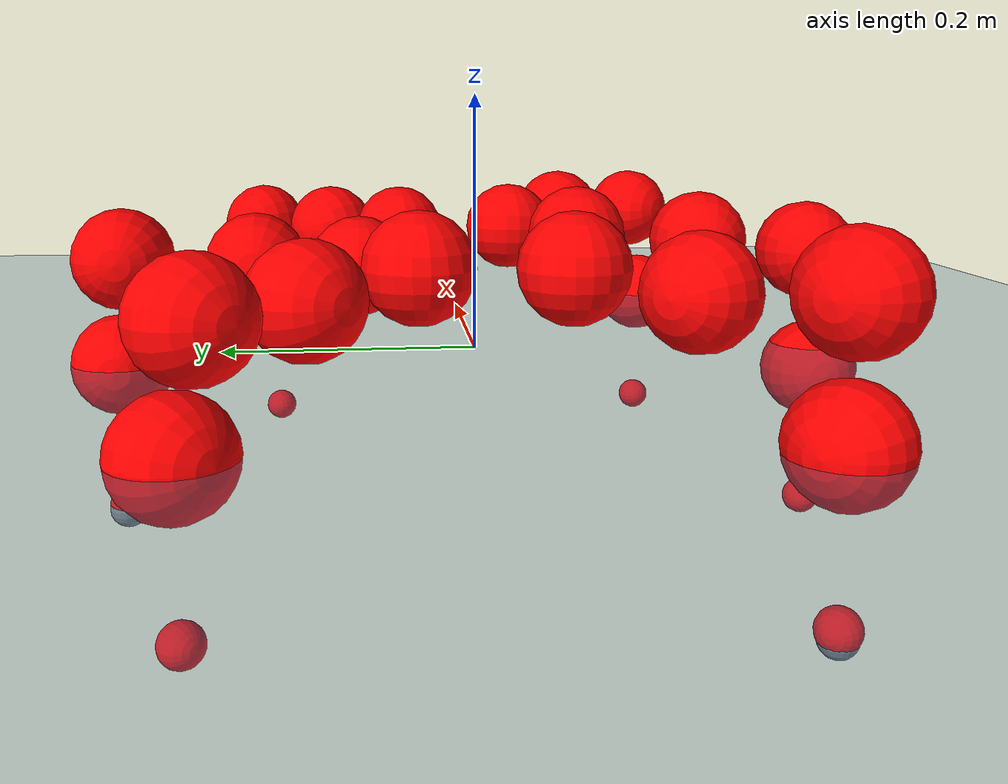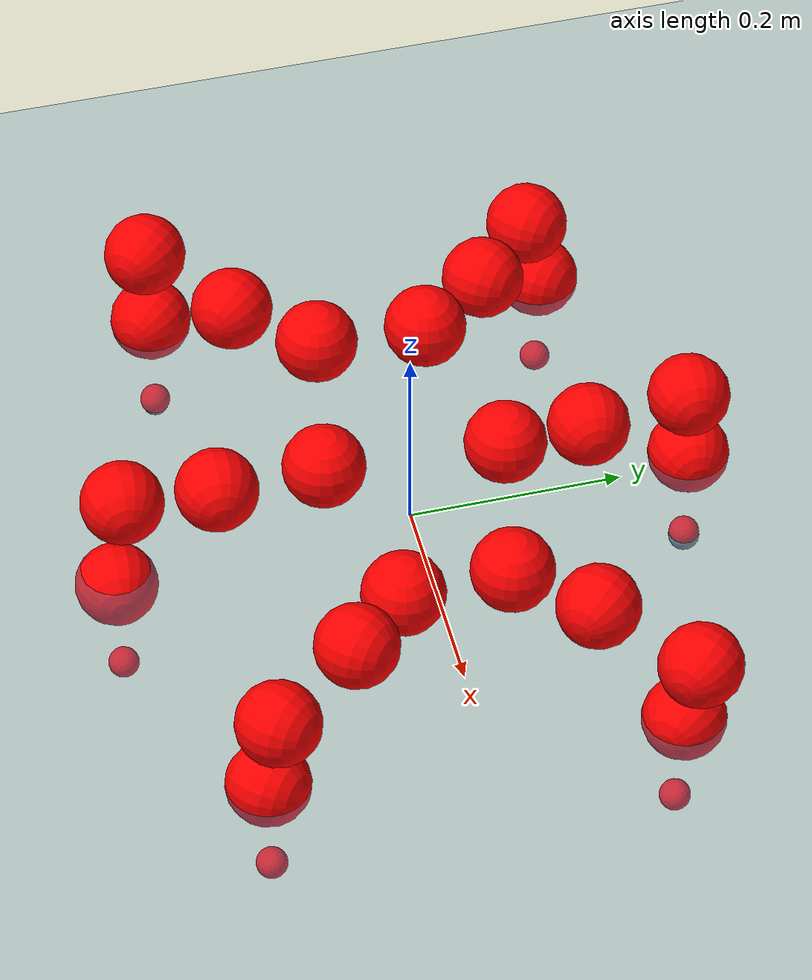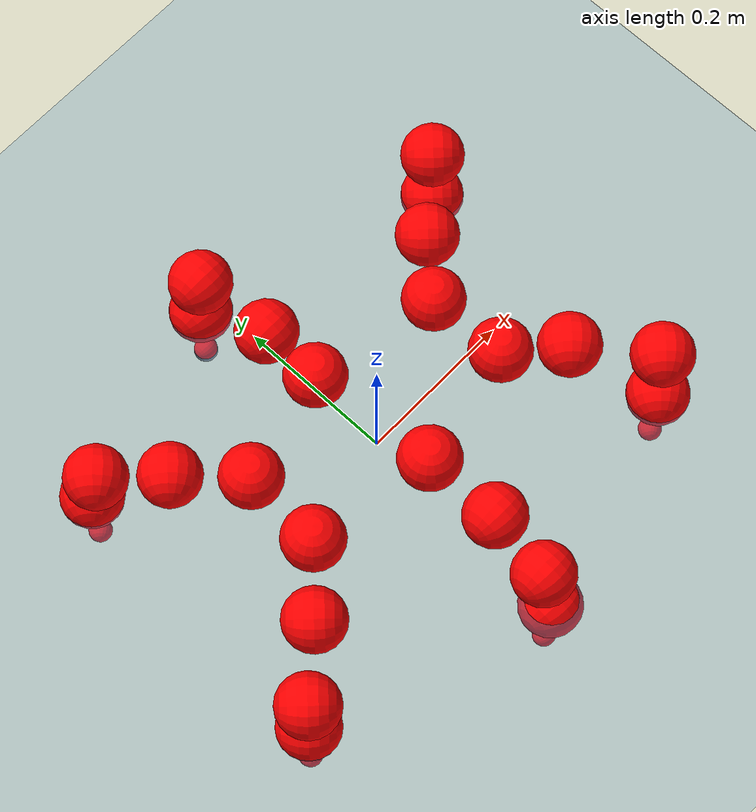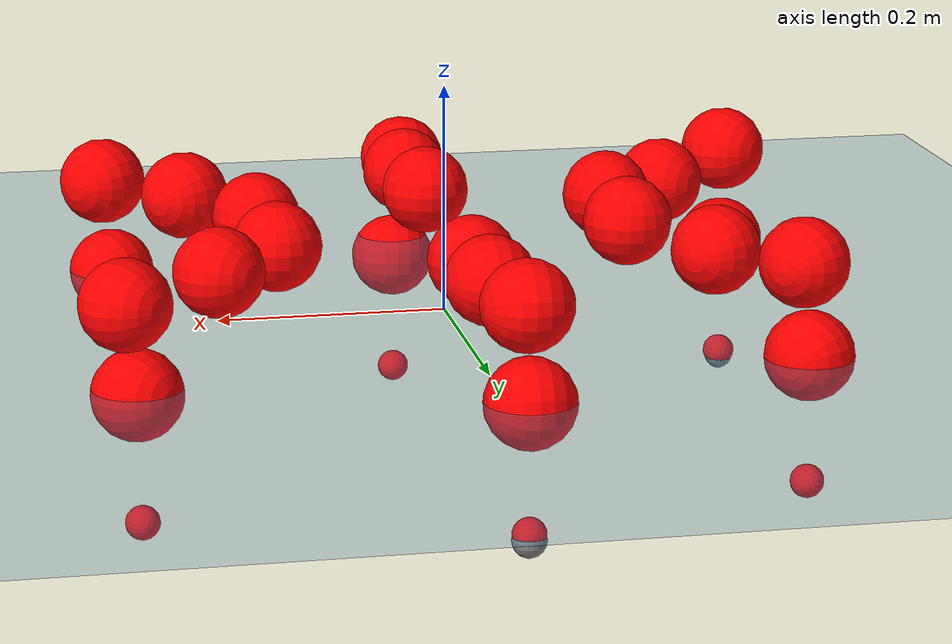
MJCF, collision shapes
<mujoco model="Golem">
  <compiler angle="radian" assetdir="assets" balanceinertia="true" inertiafromgeom="false"/>

  <option timestep="0.005" density="1.2" viscosity="2e-05"/>

  <size nkey="1"/>

  <visual>
    <quality shadowsize="8192"/>
    <map shadowclip="0.5"/>
  </visual>

  <default>
    <default class="/">
      <joint armature="0.01" damping="0.01" frictionloss="0.01"/>
      <geom contype="0" conaffinity="0" group="1" solref="-1000 -80"/>
      <site size="0.01 0.005 0.005" group="5"/>
      <general forcelimited="true" biastype="affine" gainprm="25" biasprm="0 -25 -0.5"/>
      <default class="visual">
        <geom type="mesh" group="2"/>
      </default>
      <default class="collision">
        <geom group="3"/>
      </default>
      <default class="foot">
        <geom size="0.01 0 0" condim="6" group="4" priority="1" solimp="0.015 1 0.01"/>
      </default>
      <default class="reward_collision_sphere">
        <geom group="5" rgba="1 0 0 1"/>
      </default>
    </default>
  </default>

  <asset>
    <texture type="skybox" colorspace="auto" name="//unnamed_texture_0" builtin="gradient" rgb1="0.95 0.95 0.95" rgb2="0.95 0.95 0.95" width="100" height="600"/>
    <texture type="2d" colorspace="auto" name="texplane" builtin="checker" rgb1="0.345 0.575 0.748" rgb2="0.345 0.575 0.748" markrgb="1 1 1" width="512" height="512"/>
    <material name="MatPlane" class="/" texture="texplane" texuniform="true" texrepeat="2 2" specular="0.9"/>
    <mesh name="body" class="/" file="body.stl" scale="0.001 0.001 0.001"/>
    <mesh name="coxa" class="/" file="coxa.stl" scale="0.001 0.001 0.001"/>
    <mesh name="femur" class="/" file="femur.stl" scale="0.001 0.001 0.001"/>
    <mesh name="tibia" class="/" file="tibia.stl" scale="0.001 0.001 0.001"/>
    <mesh name="tarsus" class="/" file="tarsus.stl" scale="0.001 0.001 0.001"/>
  </asset>

  <worldbody>
    <geom name="floor" class="/" size="100 100 0.125" type="plane" group="0" material="MatPlane"/>
    <light name="toplight_shadow" class="/" pos="0 0 5" dir="0.0990148 0.0990148 -0.990148" type="directional" ambient="0.04 0.04 0.04" diffuse="0.55 0.55 0.55" specular="0.12 0.12 0.12"/>
    <light name="toplight_fill" class="/" pos="0 0 5" dir="0.0990148 0.0990148 -0.990148" type="directional" castshadow="false" ambient="0.04 0.04 0.04" diffuse="0.3 0.3 0.3" specular="0.08 0.08 0.08"/>
    <body name="trunk" pos="0.0059964 -0.000299193 0.0131593" quat="1 -0.00014264 -0.000312599 0.000367033">
      <inertial pos="-0.00631275 -0.00168088 -0.0119565" quat="0.998966 0.0405459 0.0138145 0.0152143" mass="2.89502" diaginertia="0.013541 0.00433535 0.0088664"/>
      <joint name="//unnamed_joint_0" type="free"/>
      <geom name="//unnamed_geom_1" class="/" pos="0 0 0.063338" quat="1 0 0 0" type="mesh" rgba="0.9 0.9 0.9 1" mesh="body"/>
      <site name="imu" class="/" pos="0.131813 0.00377288 0.0814802" size="0.00962156"/>
      <camera name="track" class="/" pos="0 -1.73442 0" quat="0.707107 0.707107 0 0" mode="trackcom"/>
      <camera name="ego_camera" class="/" pos="0.133848 0 0.0989656" quat="-0.5 -0.5 0.5 0.5"/>
      <body name="coxa_RR" pos="-0.185063 -0.0723321 0.0725712" quat="0.382239 -2.66644e-05 0.000523715 -0.924063">
        <inertial pos="-0.000913878 0.0129315 -0.00112253" quat="0.999924 0.00588751 0.0105701 0.00218315" mass="0.213848" diaginertia="0.0151592 0.00497206 0.0106393"/>
        <joint name="coxa_joint_RR" class="/" pos="0 0 0" axis="0.0380466 0.0629436 -0.997292" range="-3.11696 3.30871" armature="0.0129882" damping="0.0342261" frictionloss="0.00904368"/>
        <geom name="//unnamed_geom_2" class="/" type="mesh" rgba="0.2 0.2 0.2 1" mesh="coxa"/>
        <geom name="//unnamed_geom_3" class="reward_collision_sphere" size="0.0384862" pos="-0.0308881 0 0"/>
        <body name="femur_RR" pos="0.0631601 -0.000483613 -0.00600195" quat="0.500825 -0.49987 0.499361 0.499942">
          <inertial pos="0.00277637 -0.00697353 0.00693884" quat="0.999982 0.00449436 0.00126732 -0.00368828" mass="0.177322" diaginertia="0.011816 0.00500291 0.00944202"/>
          <joint name="femur_joint_RR" class="/" pos="0 0 0" axis="0.000325678 -0.00705113 -0.999975" stiffness="0.0255749" range="-3.20257 3.3786" armature="0.0137187" damping="0.00313948" frictionloss="0.00532565"/>
          <geom name="//unnamed_geom_4" class="/" type="mesh" rgba="0.9 0.9 0.9 1" mesh="femur"/>
          <geom name="//unnamed_geom_5" class="reward_collision_sphere" size="0.0384862"/>
          <body name="tibia_RR" pos="-0.011619 -0.102351 -0.00861453" quat="0.00132051 0.999995 -0.00162992 -0.0024014">
            <inertial pos="0.0109012 0.00766074 0.000606959" quat="0.998874 -0.038364 0.0195753 -0.0199051" mass="0.177441" diaginertia="0.0133307 0.00506633 0.00990865"/>
            <joint name="tibia_joint_RR" class="/" pos="0 0 0" axis="0.000778679 -0.033643 0.999434" range="-2.88596 3.24234" armature="0.0136273" damping="0.0351966" frictionloss="0.00923581"/>
            <geom name="//unnamed_geom_6" class="/" type="mesh" rgba="0.2 0.2 0.2 1" mesh="tibia"/>
            <geom name="//unnamed_geom_7" class="reward_collision_sphere" size="0.0384862"/>
            <body name="tarsus_RR" pos="0.0868583 -0.00181061 0.000825177" quat="0.999999 -0.00139472 1.10658e-05 0.000788981">
              <inertial pos="0.061053 -0.0117088 0.00895992" quat="0.502787 0.492983 0.517969 0.485676" mass="0.176028" diaginertia="0.0111778 0.00438833 0.00939767"/>
              <joint name="tarsus_joint_RR" class="/" pos="0 0 0" axis="-0.00202532 -0.000960389 0.999997" stiffness="0.0627023" range="-3.16578 3.15339" armature="0.00468841" damping="0.00360925" frictionloss="0.00486207"/>
              <geom name="//unnamed_geom_8" class="/" type="mesh" rgba="0.9 0.9 0.9 1" mesh="tarsus"/>
              <geom name="foot_1" class="foot" size="0.0127609" pos="0.115316 0 0" quat="0 -0.707107 0 0.707107"/>
              <geom name="//unnamed_geom_10" class="reward_collision_sphere" size="0.0384862"/>
              <geom name="//unnamed_geom_11" class="reward_collision_sphere" size="0.0144323" pos="0.110682 0 0"/>
              <site name="foot_1" class="foot" pos="0.115316 0 0" quat="0 -0.707107 0 0.707107" size="0.00962156"/>
            </body>
          </body>
        </body>
      </body>
      <body name="coxa_RM" pos="-0.0046112 -0.111541 0.0763843" quat="0.702514 -0.00103325 0.00190733 -0.711666">
        <inertial pos="0.0111913 -0.000392102 0.00561588" quat="0.999974 -0.0060449 0.000344832 -0.00402274" mass="0.207452" diaginertia="0.0140713 0.00576776 0.0104751"/>
        <joint name="coxa_joint_RM" class="/" pos="0 0 0" axis="0.0134929 -0.00149482 -0.999908" stiffness="0.0292193" range="-2.8633 3.11485" armature="0.0112965" damping="0" frictionloss="0.0100337"/>
        <geom name="//unnamed_geom_12" class="/" type="mesh" rgba="0.2 0.2 0.2 1" mesh="coxa"/>
        <geom name="//unnamed_geom_13" class="reward_collision_sphere" size="0.0384862" pos="-0.0308881 0 0"/>
        <body name="femur_RM" pos="0.0684125 0.00237376 -0.00471945" quat="0.499311 -0.497167 0.498686 0.504803">
          <inertial pos="-0.00597494 0.00531583 -0.00507596" quat="0.998404 -0.0505184 0.0244181 0.00634194" mass="0.157688" diaginertia="0.0100298 0.00480879 0.00834259"/>
          <joint name="femur_joint_RM" class="/" pos="0 0 0" axis="0.000661887 -0.00226513 -0.999997" stiffness="0.0655889" range="-3.15427 3.11283" armature="0.0087523" damping="0.0219495" frictionloss="0.0120956"/>
          <geom name="//unnamed_geom_14" class="/" type="mesh" rgba="0.9 0.9 0.9 1" mesh="femur"/>
          <geom name="//unnamed_geom_15" class="reward_collision_sphere" size="0.0384862"/>
          <body name="tibia_RM" pos="0.00669519 -0.0849604 -0.0112569" quat="-0.000308555 1 -0.000726515 -0.00036668">
            <inertial pos="0.00420936 -0.0145504 -3.93835e-05" quat="0.999906 0.00146514 0.002912 -0.0133229" mass="0.147674" diaginertia="0.00975336 0.00410016 0.00724722"/>
            <joint name="tibia_joint_RM" class="/" pos="0 0 0" axis="-0.00892815 0.0360609 0.99931" range="-3.31494 3.43383" armature="0.00604046" damping="0.0693363" frictionloss="0.00958358"/>
            <geom name="//unnamed_geom_16" class="/" type="mesh" rgba="0.2 0.2 0.2 1" mesh="tibia"/>
            <geom name="//unnamed_geom_17" class="reward_collision_sphere" size="0.0384862"/>
            <body name="tarsus_RM" pos="0.0992445 0.0118238 -0.00699481" quat="0.999989 2.45973e-05 -0.00269273 -0.00370809">
              <inertial pos="0.0565838 -0.0134151 -0.00471836" quat="0.494883 0.502051 0.502837 0.50019" mass="0.232643" diaginertia="0.0126879 0.00528353 0.0114032"/>
              <joint name="tarsus_joint_RM" class="/" pos="0 0 0" axis="0.0338613 0.0135596 0.999335" stiffness="0.00390745" range="-3.15606 3.18588" armature="0.0060408" damping="0" frictionloss="0.00994257"/>
              <geom name="//unnamed_geom_18" class="/" type="mesh" rgba="0.9 0.9 0.9 1" mesh="tarsus"/>
              <geom name="foot_2" class="foot" size="0.00783052" pos="0.115316 0 0" quat="0 -0.707107 0 0.707107"/>
              <geom name="//unnamed_geom_20" class="reward_collision_sphere" size="0.0384862"/>
              <geom name="//unnamed_geom_21" class="reward_collision_sphere" size="0.0144323" pos="0.110682 0 0"/>
              <site name="foot_2" class="foot" pos="0.115316 0 0" quat="0 -0.707107 0 0.707107" size="0.00962156"/>
            </body>
          </body>
        </body>
      </body>
      <body name="coxa_RF" pos="0.175388 -0.0674399 0.0672689" quat="0.925406 0.00012076 -0.000359337 -0.378977">
        <inertial pos="0.0117859 -0.00299566 -0.0103789" quat="0.999339 0.00113405 0.0226939 -0.028381" mass="0.13809" diaginertia="0.010411 0.00474511 0.00857081"/>
        <joint name="coxa_joint_RF" class="/" pos="0 0 0" axis="-0.011185 -0.0346365 -0.999337" stiffness="0.014404" range="-2.98901 3.13034" armature="0.0149372" damping="0" frictionloss="0.0058089"/>
        <geom name="//unnamed_geom_22" class="/" type="mesh" rgba="0.2 0.2 0.2 1" mesh="coxa"/>
        <geom name="//unnamed_geom_23" class="reward_collision_sphere" size="0.0384862" pos="-0.0308881 0 0"/>
        <body name="femur_RF" pos="0.0486112 -8.19601e-06 0.00832413" quat="0.503736 -0.496857 0.501737 0.497638">
          <inertial pos="0.00182856 0.00595457 -0.00139064" quat="0.99998 0.00445167 -0.00283601 0.00361977" mass="0.238119" diaginertia="0.0114652 0.00606787 0.012208"/>
          <joint name="femur_joint_RF" class="/" pos="0 0 0" axis="-0.00124255 -0.00133111 -0.999998" stiffness="0.0681524" range="-3.24314 3.3901" armature="0.0159336" damping="0" frictionloss="0.0162721"/>
          <geom name="//unnamed_geom_24" class="/" type="mesh" rgba="0.9 0.9 0.9 1" mesh="femur"/>
          <geom name="//unnamed_geom_25" class="reward_collision_sphere" size="0.0384862"/>
          <body name="tibia_RF" pos="0.00426892 -0.106659 -0.0133204" quat="2.09563e-05 1 -1.28607e-05 0.000188656">
            <inertial pos="0.0119776 0.00302345 -0.000908247" quat="1 -7.7524e-05 0.000299931 -8.14812e-05" mass="0.194404" diaginertia="0.0143295 0.00537743 0.0104653"/>
            <joint name="tibia_joint_RF" class="/" pos="0 0 0" axis="-0.0342442 0.00260433 0.99941" stiffness="0.0289616" range="-3.29933 3.1295" armature="0.0095567" damping="0.0634534" frictionloss="0.00603222"/>
            <geom name="//unnamed_geom_26" class="/" type="mesh" rgba="0.2 0.2 0.2 1" mesh="tibia"/>
            <geom name="//unnamed_geom_27" class="reward_collision_sphere" size="0.0384862"/>
            <body name="tarsus_RF" pos="0.0871541 0.00161653 0.0118556" quat="0.99999 -0.00171904 0.00370519 0.00194499">
              <inertial pos="0.0730232 0.00741913 -0.000468167" quat="0.539161 0.522551 0.488328 0.444727" mass="0.186186" diaginertia="0.0124359 0.00471503 0.011969"/>
              <joint name="tarsus_joint_RF" class="/" pos="0 0 0" axis="-0.0295758 0.0195351 0.999372" range="-3.07513 3.16399" armature="0.0154654" damping="0.0146135" frictionloss="0.0149248"/>
              <geom name="//unnamed_geom_28" class="/" type="mesh" rgba="0.9 0.9 0.9 1" mesh="tarsus"/>
              <geom name="foot_3" class="foot" size="0.00948671" pos="0.115316 0 0" quat="0 -0.707107 0 0.707107"/>
              <geom name="//unnamed_geom_30" class="reward_collision_sphere" size="0.0384862"/>
              <geom name="//unnamed_geom_31" class="reward_collision_sphere" size="0.0144323" pos="0.110682 0 0"/>
              <site name="foot_3" class="foot" pos="0.115316 0 0" quat="0 -0.707107 0 0.707107" size="0.00962156"/>
            </body>
          </body>
        </body>
      </body>
      <body name="coxa_LR" pos="-0.179454 0.0738179 0.0734451" quat="0.381487 -0.000525723 -0.000690174 0.924374">
        <inertial pos="-0.00504486 -0.000253675 6.37177e-05" quat="0.997925 0.012594 -0.0567874 0.027598" mass="0.168114" diaginertia="0.011429 0.00386683 0.00925987"/>
        <joint name="coxa_joint_LR" class="/" pos="0 0 0" axis="-0.0170061 -0.0234674 -0.99958" range="-3.15438 3.01641" armature="0.00427932" damping="0.00235725" frictionloss="0.00733355"/>
        <geom name="//unnamed_geom_32" class="/" type="mesh" rgba="0.2 0.2 0.2 1" mesh="coxa"/>
        <geom name="//unnamed_geom_33" class="reward_collision_sphere" size="0.0384862" pos="-0.0308881 0 0"/>
        <body name="femur_LR" pos="0.0615117 -0.00817688 -0.0104545" quat="0.50315 -0.497745 0.497929 0.501155">
          <inertial pos="0.0109036 0.0125927 -0.012579" quat="1 -0.000240275 -1.15412e-05 9.60022e-05" mass="0.137769" diaginertia="0.00970041 0.00383625 0.00916628"/>
          <joint name="femur_joint_LR" class="/" pos="0 0 0" axis="0.00142396 -0.0657645 0.997834" stiffness="0.0327964" range="-2.96168 3.3317" armature="0.00254254" damping="0.00780801" frictionloss="0.0148251"/>
          <geom name="//unnamed_geom_34" class="/" type="mesh" rgba="0.9 0.9 0.9 1" mesh="femur"/>
          <geom name="//unnamed_geom_35" class="reward_collision_sphere" size="0.0384862"/>
          <body name="tibia_LR" pos="-0.00110331 -0.0840134 0.000642015" quat="3.35304e-05 1 -5.49658e-06 3.76035e-05">
            <inertial pos="-0.000264236 0.0125202 0.00105293" quat="0.99944 0.0149343 -0.0136602 -0.0266306" mass="0.222347" diaginertia="0.0141197 0.00497664 0.0123078"/>
            <joint name="tibia_joint_LR" class="/" pos="0 0 0" axis="-0.00316198 -0.0592565 -0.998238" stiffness="0.0588601" range="-3.11289 3.37387" armature="0.0098422" damping="0" frictionloss="0.00537187"/>
            <geom name="//unnamed_geom_36" class="/" type="mesh" rgba="0.2 0.2 0.2 1" mesh="tibia"/>
            <geom name="//unnamed_geom_37" class="reward_collision_sphere" size="0.0384862"/>
            <body name="tarsus_LR" pos="0.0770033 0.0113289 0.00800671" quat="0.999991 0.000932674 0.00115145 0.00400851">
              <inertial pos="0.0673037 -0.00587079 0.00989219" quat="0.500013 0.499988 0.499813 0.500185" mass="0.199392" diaginertia="0.0118316 0.00450692 0.00926916"/>
              <joint name="tarsus_joint_LR" class="/" pos="0 0 0" axis="6.85753e-05 0.00178792 -0.999998" stiffness="0.0230279" range="-2.94407 3.16197" armature="0.0147268" damping="0.0174075" frictionloss="0.00953639"/>
              <geom name="//unnamed_geom_38" class="/" type="mesh" rgba="0.9 0.9 0.9 1" mesh="tarsus"/>
              <geom name="foot_4" class="foot" size="0.00969701" pos="0.115316 0 0" quat="0.707107 0 -0.707107 0"/>
              <geom name="//unnamed_geom_40" class="reward_collision_sphere" size="0.0384862"/>
              <geom name="//unnamed_geom_41" class="reward_collision_sphere" size="0.0144323" pos="0.110682 0 0"/>
              <site name="foot_4" class="foot" pos="0.115316 0 0" quat="0.707107 0 -0.707107 0" size="0.00962156"/>
            </body>
          </body>
        </body>
      </body>
      <body name="coxa_LM" pos="-0.012771 0.122256 0.0555018" quat="0.707091 4.78309e-05 -0.000207733 0.707123">
        <inertial pos="-0.00808272 -0.0046354 -0.00524977" quat="0.999421 0.00280144 -0.0333014 -0.00631939" mass="0.203181" diaginertia="0.0100935 0.00529321 0.00909697"/>
        <joint name="coxa_joint_LM" class="/" pos="0 0 0" axis="0.0203517 -0.0562079 -0.998212" stiffness="0.0231339" range="-3.25906 2.86431" armature="0.0096958" damping="0.0142382" frictionloss="0.00914585"/>
        <geom name="//unnamed_geom_42" class="/" type="mesh" rgba="0.2 0.2 0.2 1" mesh="coxa"/>
        <geom name="//unnamed_geom_43" class="reward_collision_sphere" size="0.0384862" pos="-0.0308881 0 0"/>
        <body name="femur_LM" pos="0.0476609 -5.93467e-05 0.00335747" quat="0.49925 -0.504554 0.496952 0.499212">
          <inertial pos="-0.00935788 0.00193679 0.00875214" quat="0.999993 -0.00235772 -0.00266008 -0.000885862" mass="0.130952" diaginertia="0.0104625 0.00432782 0.00724796"/>
          <joint name="femur_joint_LM" class="/" pos="0 0 0" axis="-0.0451818 -0.0195608 0.998787" range="-2.8939 3.38268" armature="0.00766914" damping="0" frictionloss="0.00537819"/>
          <geom name="//unnamed_geom_44" class="/" type="mesh" rgba="0.9 0.9 0.9 1" mesh="femur"/>
          <geom name="//unnamed_geom_45" class="reward_collision_sphere" size="0.0384862"/>
          <body name="tibia_LM" pos="-0.00437167 -0.0982932 0.00859867" quat="0.00176026 0.999998 -0.000996599 0.000414785">
            <inertial pos="-0.00874909 -0.0070939 0.000536405" quat="0.999689 0.0096883 0.0204618 0.0104628" mass="0.150084" diaginertia="0.0103519 0.00519982 0.00776843"/>
            <joint name="tibia_joint_LM" class="/" pos="0 0 0" axis="-0.0430369 0.00748095 -0.999045" stiffness="0.0736044" range="-3.14201 3.1204" armature="0.0153008" damping="0.0373282" frictionloss="0.00938423"/>
            <geom name="//unnamed_geom_46" class="/" type="mesh" rgba="0.2 0.2 0.2 1" mesh="tibia"/>
            <geom name="//unnamed_geom_47" class="reward_collision_sphere" size="0.0384862"/>
            <body name="tarsus_LM" pos="0.0801306 0.0031522 -0.00249717" quat="1 -6.16968e-05 0.000100115 0.000332138">
              <inertial pos="0.0589928 0.000822439 -0.0103543" quat="0.506314 0.502542 0.517071 0.473006" mass="0.190367" diaginertia="0.0134362 0.00424304 0.00929472"/>
              <joint name="tarsus_joint_LM" class="/" pos="0 0 0" axis="-0.000799077 -3.537e-05 -1" stiffness="0.0442262" range="-3.0512 3.14864" armature="0.0105177" damping="0" frictionloss="0.00938453"/>
              <geom name="//unnamed_geom_48" class="/" type="mesh" rgba="0.9 0.9 0.9 1" mesh="tarsus"/>
              <geom name="foot_5" class="foot" size="0.0147877" pos="0.115316 0 0" quat="0.707107 0 -0.707107 0"/>
              <geom name="//unnamed_geom_50" class="reward_collision_sphere" size="0.0384862"/>
              <geom name="//unnamed_geom_51" class="reward_collision_sphere" size="0.0144323" pos="0.110682 0 0"/>
              <site name="foot_5" class="foot" pos="0.115316 0 0" quat="0.707107 0 -0.707107 0" size="0.00962156"/>
            </body>
          </body>
        </body>
      </body>
      <body name="coxa_LF" pos="0.17028 0.0771381 0.0657184" quat="0.922518 -0.00484806 0.0016832 0.385919">
        <inertial pos="-0.00079343 -0.000474642 -0.0103346" quat="0.999832 -0.0125252 0.0110764 0.00755955" mass="0.193318" diaginertia="0.0111063 0.00621287 0.00999268"/>
        <joint name="coxa_joint_LF" class="/" pos="0 0 0" axis="0.0513086 0.0180227 -0.99852" stiffness="0.0193254" range="-3.18704 3.11422" armature="0.00909365" damping="0" frictionloss="0.0146992"/>
        <geom name="//unnamed_geom_52" class="/" type="mesh" rgba="0.2 0.2 0.2 1" mesh="coxa"/>
        <geom name="//unnamed_geom_53" class="reward_collision_sphere" size="0.0384862" pos="-0.0308881 0 0"/>
        <body name="femur_LF" pos="0.0542342 0.00365783 -0.00272317" quat="0.500021 -0.497741 0.500701 0.501529">
          <inertial pos="0.00169826 -0.000345307 -0.0123438" quat="0.999032 0.0131375 -0.0412655 0.00773464" mass="0.143549" diaginertia="0.012861 0.00505742 0.00952928"/>
          <joint name="femur_joint_LF" class="/" pos="0 0 0" axis="0.0196252 -0.0448776 0.9988" stiffness="0.010255" range="-3.16599 3.11842" armature="0.00922302" damping="0.00773879" frictionloss="0.00412583"/>
          <geom name="//unnamed_geom_54" class="/" type="mesh" rgba="0.9 0.9 0.9 1" mesh="femur"/>
          <geom name="//unnamed_geom_55" class="reward_collision_sphere" size="0.0384862"/>
          <body name="tibia_LF" pos="0.00311225 -0.108257 -0.0106441" quat="0.000304393 0.999979 0.00646996 0.000592474">
            <inertial pos="-0.0020609 0.00069429 0.00999953" quat="0.997974 0.00562302 -0.019352 0.0603406" mass="0.159618" diaginertia="0.00942504 0.00477151 0.00928934"/>
            <joint name="tibia_joint_LF" class="/" pos="0 0 0" axis="0.00434355 -0.00127972 -0.99999" stiffness="0.0452153" range="-3.4297 3.01832" armature="0.0104783" damping="0" frictionloss="0.00943993"/>
            <geom name="//unnamed_geom_56" class="/" type="mesh" rgba="0.2 0.2 0.2 1" mesh="tibia"/>
            <geom name="//unnamed_geom_57" class="reward_collision_sphere" size="0.0384862"/>
            <body name="tarsus_LF" pos="0.0786371 -0.010699 -3.45778e-05" quat="0.999994 0.00128047 -0.00109417 -0.00286397">
              <inertial pos="0.0752469 0.00456905 0.000804362" quat="0.502086 0.498316 0.497392 0.502187" mass="0.217328" diaginertia="0.0140143 0.00600305 0.00886559"/>
              <joint name="tarsus_joint_LF" class="/" pos="0 0 0" axis="0.00853276 -0.056866 -0.998345" stiffness="0.049808" range="-3.1671 3.34917" armature="0.00348861" damping="0" frictionloss="0.00284504"/>
              <geom name="//unnamed_geom_58" class="/" type="mesh" rgba="0.9 0.9 0.9 1" mesh="tarsus"/>
              <geom name="foot_6" class="foot" size="0.00835695" pos="0.115316 0 0" quat="0.707107 0 -0.707107 0"/>
              <geom name="//unnamed_geom_60" class="reward_collision_sphere" size="0.0384862"/>
              <geom name="//unnamed_geom_61" class="reward_collision_sphere" size="0.0144323" pos="0.110682 0 0"/>
              <site name="foot_6" class="foot" pos="0.115316 0 0" quat="0.707107 0 -0.707107 0" size="0.00962156"/>
            </body>
          </body>
        </body>
      </body>
    </body>
  </worldbody>

  <contact>
    <pair class="/" geom1="floor" geom2="foot_1" name="//unnamed_contact_0"/>
    <pair class="/" geom1="floor" geom2="foot_2" name="//unnamed_contact_1"/>
    <pair class="/" geom1="floor" geom2="foot_3" name="//unnamed_contact_2"/>
    <pair class="/" geom1="floor" geom2="foot_4" name="//unnamed_contact_3"/>
    <pair class="/" geom1="floor" geom2="foot_5" name="//unnamed_contact_4"/>
    <pair class="/" geom1="floor" geom2="foot_6" name="//unnamed_contact_5"/>
  </contact>

  <actuator>
    <general name="coxa_joint_RR" class="/" joint="coxa_joint_RR" forcerange="-4.91777 4.91777" gainprm="22.1252" biasprm="0 -22.1252 -0.463959"/>
    <general name="femur_joint_RR" class="/" joint="femur_joint_RR" forcerange="-4.54835 4.54835" gainprm="22.1252" biasprm="0 -22.1252 -0.463959"/>
    <general name="tibia_joint_RR" class="/" joint="tibia_joint_RR" forcerange="-9.6019 9.6019" gainprm="22.1252" biasprm="0 -22.1252 -0.463959"/>
    <general name="tarsus_joint_RR" class="/" joint="tarsus_joint_RR" forcerange="-9.79884 9.79884" gainprm="22.1252" biasprm="0 -22.1252 -0.463959"/>
    <general name="coxa_joint_RM" class="/" joint="coxa_joint_RM" forcerange="-10.2604 10.2604" gainprm="22.1252" biasprm="0 -22.1252 -0.463959"/>
    <general name="femur_joint_RM" class="/" joint="femur_joint_RM" forcerange="-6.44231 6.44231" gainprm="22.1252" biasprm="0 -22.1252 -0.463959"/>
    <general name="tibia_joint_RM" class="/" joint="tibia_joint_RM" forcerange="-6.76515 6.76515" gainprm="22.1252" biasprm="0 -22.1252 -0.463959"/>
    <general name="tarsus_joint_RM" class="/" joint="tarsus_joint_RM" forcerange="-7.0109 7.0109" gainprm="22.1252" biasprm="0 -22.1252 -0.463959"/>
    <general name="coxa_joint_RF" class="/" joint="coxa_joint_RF" forcerange="-6.81444 6.81444" gainprm="22.1252" biasprm="0 -22.1252 -0.463959"/>
    <general name="femur_joint_RF" class="/" joint="femur_joint_RF" forcerange="-3.24383 3.24383" gainprm="22.1252" biasprm="0 -22.1252 -0.463959"/>
    <general name="tibia_joint_RF" class="/" joint="tibia_joint_RF" forcerange="-3.70242 3.70242" gainprm="22.1252" biasprm="0 -22.1252 -0.463959"/>
    <general name="tarsus_joint_RF" class="/" joint="tarsus_joint_RF" forcerange="-3.91073 3.91073" gainprm="22.1252" biasprm="0 -22.1252 -0.463959"/>
    <general name="coxa_joint_LR" class="/" joint="coxa_joint_LR" forcerange="-7.3244 7.3244" gainprm="22.1252" biasprm="0 -22.1252 -0.463959"/>
    <general name="femur_joint_LR" class="/" joint="femur_joint_LR" forcerange="-7.26426 7.26426" gainprm="22.1252" biasprm="0 -22.1252 -0.463959"/>
    <general name="tibia_joint_LR" class="/" joint="tibia_joint_LR" forcerange="-3.3539 3.3539" gainprm="22.1252" biasprm="0 -22.1252 -0.463959"/>
    <general name="tarsus_joint_LR" class="/" joint="tarsus_joint_LR" forcerange="-3.7047 3.7047" gainprm="22.1252" biasprm="0 -22.1252 -0.463959"/>
    <general name="coxa_joint_LM" class="/" joint="coxa_joint_LM" forcerange="-7.01351 7.01351" gainprm="22.1252" biasprm="0 -22.1252 -0.463959"/>
    <general name="femur_joint_LM" class="/" joint="femur_joint_LM" forcerange="-7.30158 7.30158" gainprm="22.1252" biasprm="0 -22.1252 -0.463959"/>
    <general name="tibia_joint_LM" class="/" joint="tibia_joint_LM" forcerange="-7.16959 7.16959" gainprm="22.1252" biasprm="0 -22.1252 -0.463959"/>
    <general name="tarsus_joint_LM" class="/" joint="tarsus_joint_LM" forcerange="-8.40685 8.40685" gainprm="22.1252" biasprm="0 -22.1252 -0.463959"/>
    <general name="coxa_joint_LF" class="/" joint="coxa_joint_LF" forcerange="-6.68714 6.68714" gainprm="22.1252" biasprm="0 -22.1252 -0.463959"/>
    <general name="femur_joint_LF" class="/" joint="femur_joint_LF" forcerange="-3.9906 3.9906" gainprm="22.1252" biasprm="0 -22.1252 -0.463959"/>
    <general name="tibia_joint_LF" class="/" joint="tibia_joint_LF" forcerange="-4.1866 4.1866" gainprm="22.1252" biasprm="0 -22.1252 -0.463959"/>
    <general name="tarsus_joint_LF" class="/" joint="tarsus_joint_LF" forcerange="-6.77954 6.77954" gainprm="22.1252" biasprm="0 -22.1252 -0.463959"/>
  </actuator>

  <sensor>
    <gyro site="imu" name="imu_angular_velocity"/>
    <velocimeter site="imu" name="imu_linear_velocity"/>
    <framelinvel objtype="site" objname="foot_1" name="foot_1_global_linear_velocity"/>
    <framelinvel objtype="site" objname="foot_2" name="foot_2_global_linear_velocity"/>
    <framelinvel objtype="site" objname="foot_3" name="foot_3_global_linear_velocity"/>
    <framelinvel objtype="site" objname="foot_4" name="foot_4_global_linear_velocity"/>
    <framelinvel objtype="site" objname="foot_5" name="foot_5_global_linear_velocity"/>
    <framelinvel objtype="site" objname="foot_6" name="foot_6_global_linear_velocity"/>
  </sensor>

  <keyframe>
    <key name="home" qpos="0 0 0.1457 1 0 0 0 0 0 0 0 0 0 0 0 0 0 0 0 0 0 0 0 0 0 0 0 0 0 0 0"/>
  </keyframe>
</mujoco>
